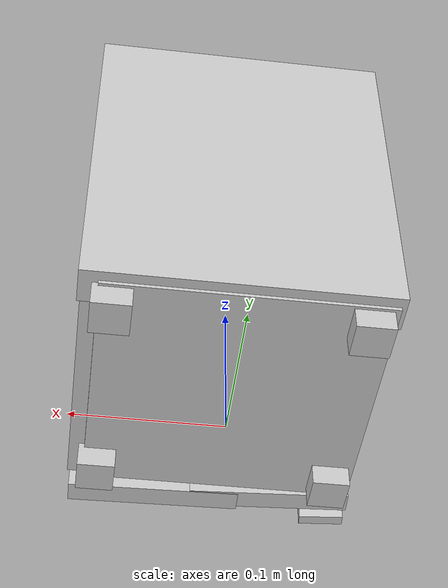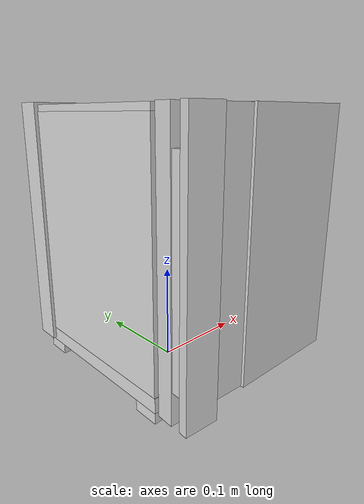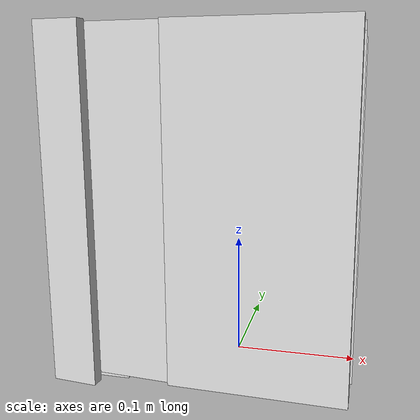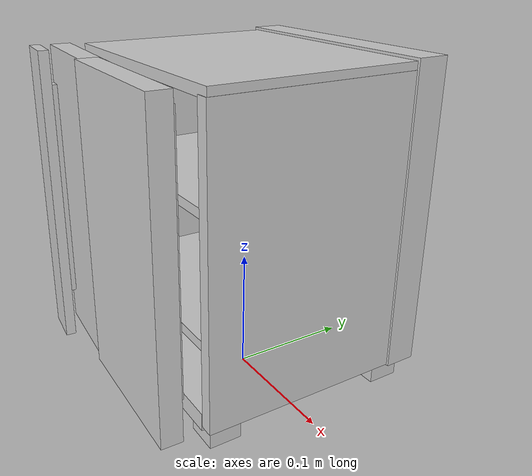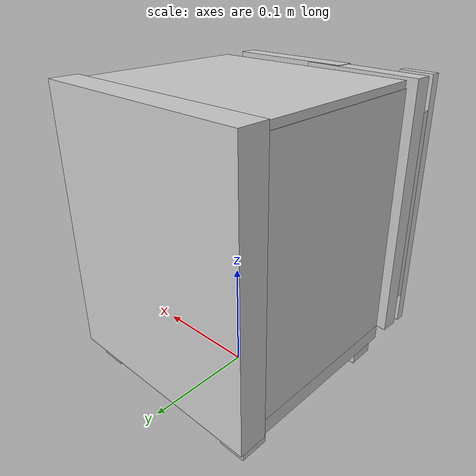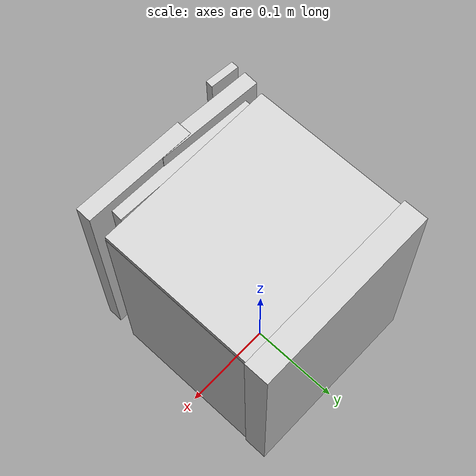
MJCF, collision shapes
<mujoco model="short_fridge">
    <compiler angle="radian" meshdir="./" />
    <size njmax="500" nconmax="100" />
    <asset>
        <texture file="short_fridge/metal.png" name="tex-base_vis" type="2d"/>
        <material name="base_vis" reflectance="0.5" texrepeat="1 1" texture="tex-base_vis" texuniform="false" />
        <mesh name="base_vis" file="short_fridge/base/visual/base_vis.msh" scale="0.10 0.10 0.10"/>
        <mesh name="door_vis" file="short_fridge/door/visual/door_vis.msh" scale="0.10 0.10 0.10"/>
        <material name="base_layers_vis" reflectance="0.5" texrepeat="1 1"
		  rgba="1 1 1 0.2"/>
        <mesh name="base_layers_vis" file="short_fridge/base/visual/base_layers_vis.msh" scale="0.10 0.10 0.10"/>
    </asset>
    <worldbody>
        <body>
          <body name="object">
	    <body name="base" pos="0 0 0.04" quat="0.5 0.5 -0.5 -0.5">
              <site rgba="0 0 0 0" type="box" pos="0.00610 0.18004 -0.00308" quat="0.70711 -0.00000 -0.00000 -0.70711" size="0.03420 0.07483 0.08556" name="upper_region"/>
              <site rgba="0 0 0 0" type="box" pos="0.00610 0.09421 -0.00308" quat="0.00000 0.70711 0.70711 0.00000" size="0.04011 0.07483 0.08556" name="middle_region"/>
              <site rgba="0 0 0 0" type="box" pos="0.00610 0.02342 -0.00308" quat="0.00000 0.70711 0.70711 0.00000" size="0.02178 0.07483 0.08556" name="lower_region"/>
	      <geom solimp="0.998 0.998 0.001" solref="0.001 1" density="100" friction="0.95 0.3 0.1" type="mesh" mesh="base_vis" conaffinity="0" contype="0" group="1" material="base_vis"/>
	      <geom solimp="0.998 0.998 0.001" solref="0.001 1" density="100" friction="0.95 0.3 0.1" type="mesh" mesh="base_layers_vis" conaffinity="0" contype="0" group="1" material="base_layers_vis"/>

	      <geom solimp="0.998 0.998 0.001" solref="0.001 1" density="100" friction="0.95 0.3 0.1" type="box" pos="-0.08603 0.10856 -0.00036" quat="0.70711 0.70711 0.00000 -0.00000" size="0.01277 0.10000 0.12189" group="0" rgba="0.8 0.8 0.8 0.3"/>
	      <geom solimp="0.998 0.998 0.001" solref="0.001 1" density="100" friction="0.95 0.3 0.1" type="box" pos="0.07324 -0.02013 -0.07936" quat="0.00000 0.70711 0.70711 0.00000" size="0.01058 0.01260 0.01260" group="0" rgba="0.8 0.8 0.8 0.3"/>
	      <geom solimp="0.998 0.998 0.001" solref="0.001 1" density="100" friction="0.95 0.3 0.1" type="box" pos="0.07324 -0.02013 0.07991" quat="0.00000 0.70711 0.70711 0.00000" size="0.01058 0.01260 0.01260" group="0" rgba="0.8 0.8 0.8 0.3"/>
	      <geom solimp="0.998 0.998 0.001" solref="0.001 1" density="100" friction="0.95 0.3 0.1" type="box" pos="-0.07711 -0.02013 0.07991" quat="0.00000 0.70711 0.70711 0.00000" size="0.01058 0.01260 0.01260" group="0" rgba="0.8 0.8 0.8 0.3"/>
	      <geom solimp="0.998 0.998 0.001" solref="0.001 1" density="100" friction="0.95 0.3 0.1" type="box" pos="-0.07711 -0.02013 -0.07936" quat="0.00000 0.70711 0.70711 0.00000" size="0.01058 0.01260 0.01260" group="0" rgba="0.8 0.8 0.8 0.3"/>
	      <geom solimp="0.998 0.998 0.001" solref="0.001 1" density="100" friction="0.95 0.3 0.1" type="box" pos="0.00061 0.10474 -0.09337" quat="0.50000 -0.50000 0.50000 0.50000" size="0.00520 0.08923 0.11741" group="0" rgba="0.8 0.8 0.8 0.3"/>
	      <geom solimp="0.998 0.998 0.001" solref="0.001 1" density="100" friction="0.95 0.3 0.1" type="box" pos="-0.00066 0.22434 -0.00136" quat="0.00000 0.70711 0.70711 0.00000" size="0.00400 0.09008 0.09701" group="0" rgba="0.8 0.8 0.8 0.3"/>
	      <geom solimp="0.998 0.998 0.001" solref="0.001 1" density="100" friction="0.95 0.3 0.1" type="box" pos="-0.00066 -0.00866 0.00412" quat="0.00000 0.70711 0.70711 0.00000" size="0.00712 0.09099 0.09220" group="0" rgba="0.8 0.8 0.8 0.3"/>
	      <geom solimp="0.998 0.998 0.001" solref="0.001 1" density="100" friction="0.95 0.3 0.1" type="box" pos="-0.00066 0.14180 -0.00117" quat="0.00000 0.70711 0.70711 0.00000" size="0.00375 0.08250 0.08737" group="0" rgba="0.8 0.8 0.8 0.3"/>
	      <geom solimp="0.998 0.998 0.001" solref="0.001 1" density="100" friction="0.95 0.3 0.1" type="box" pos="-0.00066 0.04622 -0.00039" quat="0.50000 0.50000 -0.50000 -0.50000" size="0.00375 0.08445 0.08502" group="0" rgba="0.8 0.8 0.8 0.3"/>
	      <geom solimp="0.998 0.998 0.001" solref="0.001 1" density="100" friction="0.95 0.3 0.1" type="box" pos="-0.01506 0.20551 -0.06987" quat="0.50000 -0.50000 -0.50000 0.50000" size="0.00675 0.01709 0.04962" group="0" rgba="0.8 0.8 0.8 0.3"/>
	      <geom solimp="0.998 0.998 0.001" solref="0.001 1" density="100" friction="0.95 0.3 0.1" type="box" pos="0.00061 0.10474 0.09111" quat="0.50000 -0.50000 0.50000 0.50000" size="0.00520 0.08923 0.11741" group="0" rgba="0.8 0.8 0.8 0.3"/>
              <body name="door" pos="0 0 0">
                <inertial pos="0 0 0" mass="3" diaginertia="1 1 1" />
                <joint name="fridge_door_joint_0" type="hinge" pos="0.11237 0.09813 -0.08471" axis="0 1 0"
		       limited="false" range="0.0 2.7" damping="1"/>
		<geom solimp="0.998 0.998 0.001" solref="0.001 1" density="100" friction="0.95 0.3 0.1" type="mesh" mesh="door_vis" conaffinity="0" contype="0" group="1" material="base_vis"/>
<geom solimp="0.998 0.998 0.001" solref="0.001 1" density="100" friction="0.95 0.3 0.1" type="box" pos="0.10361 0.10960 0.00634" quat="0.70701 0.70701 -0.01193 0.01193" size="0.00935 0.08040 0.10507" group="0" rgba="0.8 0.8 0.8 0.3"/>
<geom solimp="0.998 0.998 0.001" solref="0.001 1" density="100" friction="0.95 0.3 0.1" type="box" pos="0.11618 0.10960 -0.03715" quat="0.00901 0.00901 0.70705 -0.70705" size="0.00834 0.05988 0.11952" group="0" rgba="0.8 0.8 0.8 0.3"/>
<geom solimp="0.998 0.998 0.001" solref="0.001 1" density="100" friction="0.95 0.3 0.1" type="box" pos="0.12869 0.10960 0.08568" quat="0.03061 0.03061 0.70644 -0.70644" size="0.00399 0.01560 0.11952" group="0" rgba="0.8 0.8 0.8 0.3"/>
<geom solimp="0.998 0.998 0.001" solref="0.001 1" density="100" friction="0.95 0.3 0.1" type="box" pos="0.11706 0.10960 0.09560" quat="0.51180 0.51180 0.48791 -0.48791" size="0.00493 0.01413 0.08979" group="0" rgba="0.8 0.8 0.8 0.3"/>
<geom solimp="0.998 0.998 0.001" solref="0.001 1" density="100" friction="0.95 0.3 0.1" type="box" pos="0.11100 0.10960 0.04481" quat="0.02249 -0.02249 0.70675 0.70675" size="0.00783 0.05623 0.11913" group="0" rgba="0.8 0.8 0.8 0.3"/>

	      </body>

	    </body>
          </body>
          <site rgba="0 0 0 0" size="0.05" pos="0 0 -0.045" name="bottom_site"/>
          <site rgba="0 0 0 0" size="0.05" pos="0 0 0.045" name="top_site"/>
          <site rgba="0 0 0 0" size="0.05" pos="0.045 0.045 0" name="horizontal_radius_site"/>
	  <region name="region_2" pos="0 0 0" rgba="0 0 0 0"/>

        </body>
    </worldbody>
</mujoco>
